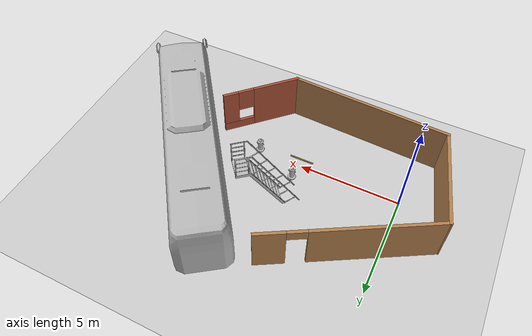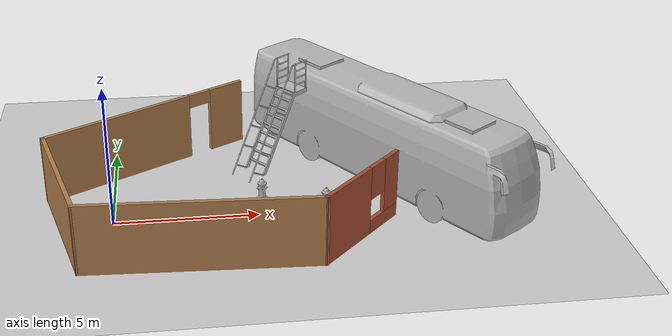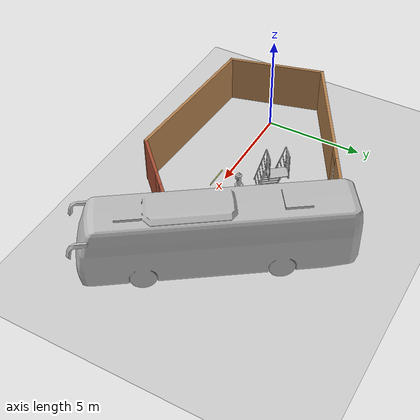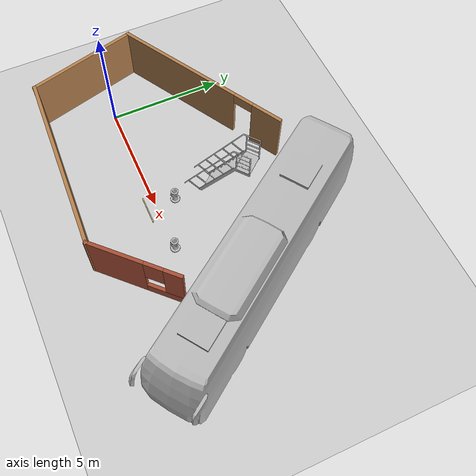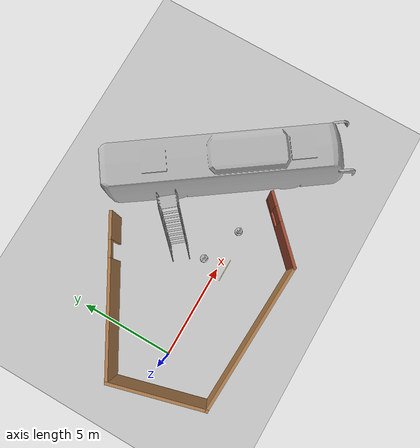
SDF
<sdf version="1.7">
 <world name="default">
  <light name="sun" type="directional">
   <pose>0 0 10 0 -0 0</pose>
   <diffuse>0.8 0.8 0.8 1</diffuse>
   <specular>0.2 0.2 0.2 1</specular>
   <attenuation>
    <range>1000</range>
    <constant>0.9</constant>
    <linear>0.01</linear>
    <quadratic>0.001</quadratic>
   </attenuation>
   <direction>-0.5 0.1 -0.9</direction>
   <spot><inner_angle>0</inner_angle><outer_angle>0</outer_angle><falloff>0</falloff></spot>
  </light>
  <model name="ground_plane">
   <static>1</static>
   <link name="link">
    <collision name="collision">
     <geometry><plane><normal>0 0 1</normal><size>100 100</size></plane></geometry>
     <surface>
      <contact><collide_bitmask>65535</collide_bitmask></contact>
      <friction><ode><mu>100</mu><mu2>50</mu2></ode></friction>
     </surface>
    </collision>
    <visual name="visual">
     <cast_shadows>0</cast_shadows>
     <geometry><plane><normal>0 0 1</normal><size>100 100</size></plane></geometry>
     <material>
      <script><uri>file://media/materials/scripts/gazebo.material</uri><name>Gazebo/Grey</name></script>
     </material>
    </visual>
   </link>
  </model>
  <gravity>0 0 -9.8</gravity>
  <magnetic_field>6e-06 2.3e-05 -4.2e-05</magnetic_field>
  <atmosphere type="adiabatic"/>
  <physics type="ode">
   <max_step_size>0.001</max_step_size>
   <real_time_factor>1</real_time_factor>
   <real_time_update_rate>1000</real_time_update_rate>
  </physics>
  <scene><ambient>0.4 0.4 0.4 1</ambient><background>0.7 0.7 0.7 1</background><shadows>1</shadows></scene>
  <audio><device>default</device></audio>
  <spherical_coordinates>
   <surface_model>EARTH_WGS84</surface_model>
   <latitude_deg>0</latitude_deg>
   <longitude_deg>0</longitude_deg>
   <elevation>0</elevation>
   <heading_deg>0</heading_deg>
  </spherical_coordinates>
  <model name="bus">
   <static>1</static>
   <link name="link">
    <collision name="collision">
     <geometry><mesh><scale>0.01 0.01 0.01</scale><uri>model://bus/meshes/bus.obj</uri></mesh></geometry>
    </collision>
    <visual name="visual">
     <geometry><mesh><scale>0.01 0.01 0.01</scale><uri>model://bus/meshes/bus.obj</uri></mesh></geometry>
    </visual>
   </link>
   <pose>9.8195 2.23158 0 0 -0 0.613704</pose>
  </model>
  <model name="fire_hydrant">
   <static>1</static>
   <link name="link">
    <collision name="collision">
     <geometry><mesh><uri>model://fire_hydrant/meshes/fire_hydrant.dae</uri></mesh></geometry>
    </collision>
    <visual name="visual">
     <geometry><mesh><uri>model://fire_hydrant/meshes/fire_hydrant.dae</uri></mesh></geometry>
    </visual>
   </link>
   <pose>7.29538 -0.014192 0 0 -0 0</pose>
  </model>
  <model name="fire_hydrant_0">
   <static>1</static>
   <link name="link">
    <collision name="collision">
     <geometry><mesh><uri>model://fire_hydrant/meshes/fire_hydrant.dae</uri></mesh></geometry>
    </collision>
    <visual name="visual">
     <geometry><mesh><uri>model://fire_hydrant/meshes/fire_hydrant.dae</uri></mesh></geometry>
    </visual>
   </link>
   <pose>5.15849 0.863008 0 0 -0 0</pose>
  </model>
  <model name="lumber_2x4x48">
   <link name="link">
    <inertial>
     <mass>1.4111</mass>
     <inertia><ixx>0.0011</ixx><ixy>0</ixy><ixz>0</ixz><iyy>0.1771</iyy><iyz>0</iyz><izz>0.1763</izz></inertia>
    </inertial>
    <collision name="collision">
     <geometry><box><size>1.2192 0.038 0.0888</size></box></geometry>
     <surface>
      <bounce><restitution_coefficient>0.01</restitution_coefficient><threshold>5</threshold></bounce>
      <friction><ode><mu>5</mu><mu2>5</mu2></ode></friction>
      <contact>
       <ode>
        <soft_cfm>0.001</soft_cfm>
        <kp>10000</kp>
        <kd>1000</kd>
        <max_vel>0.01</max_vel>
        <min_depth>0.001</min_depth>
       </ode>
      </contact>
     </surface>
    </collision>
    <visual name="visual">
     <geometry><mesh><uri>model://drc_practice_2x4/meshes/2x4x48.dae</uri></mesh></geometry>
    </visual>
   </link>
   <pose>5.16284 -0.390516 0.043055 0 -0 0</pose>
  </model>
  <model name="ladder">
   <static>1</static>
   <link name="link">
    <collision name="step0">
     <pose>0 -0.96703 0.286 0 -0 0</pose>
     <geometry><box><size>0.9 0.1016 0.0381</size></box></geometry>
    </collision>
    <collision name="step1">
     <pose>0 -0.79106 0.59054 0 -0 0</pose>
     <geometry><box><size>0.9 0.1016 0.0381</size></box></geometry>
    </collision>
    <collision name="step2">
     <pose>0 -0.61509 0.89508 0 -0 0</pose>
     <geometry><box><size>0.9 0.1016 0.0381</size></box></geometry>
    </collision>
    <collision name="step3">
     <pose>0 -0.43912 1.19962 0 -0 0</pose>
     <geometry><box><size>0.9 0.1016 0.0381</size></box></geometry>
    </collision>
    <collision name="step4">
     <pose>0 -0.26315 1.50416 0 -0 0</pose>
     <geometry><box><size>0.9 0.1016 0.0381</size></box></geometry>
    </collision>
    <collision name="step5">
     <pose>0 -0.08718 1.8087 0 -0 0</pose>
     <geometry><box><size>0.9 0.1016 0.0381</size></box></geometry>
    </collision>
    <collision name="step6">
     <pose>0 0.08879 2.11324 0 -0 0</pose>
     <geometry><box><size>0.9 0.1016 0.0381</size></box></geometry>
    </collision>
    <collision name="step7">
     <pose>0 0.26476 2.41778 0 -0 0</pose>
     <geometry><box><size>0.9 0.1016 0.0381</size></box></geometry>
    </collision>
    <collision name="landing">
     <pose>0 0.73039 2.72432 0 -0 0</pose>
     <geometry><box><size>0.9 0.6096 0.0381</size></box></geometry>
    </collision>
    <collision name="left_side_wall">
     <pose>-0.43217 -0.37451 1.3386 1.0472 -0 0</pose>
     <geometry><box><size>0.0508 3.16758 0.13</size></box></geometry>
    </collision>
    <collision name="left_side_landing_wall">
     <pose>-0.43217 0.69819 2.667 0 -0 0</pose>
     <geometry><box><size>0.0508 0.67401 0.1524</size></box></geometry>
    </collision>
    <collision name="left_railing_landing_3">
     <pose>-0.433355 0.66933 3.81 1.5707 -0 0</pose>
     <geometry><cylinder><radius>0.02413</radius><length>0.73172</length></cylinder></geometry>
    </collision>
    <collision name="left_railing_landing_2">
     <pose>-0.433355 0.73166 3.5433 1.5707 -0 0</pose>
     <geometry><cylinder><radius>0.02413</radius><length>0.5588</length></cylinder></geometry>
    </collision>
    <collision name="left_railing_landing_1">
     <pose>-0.433355 0.73166 3.2766 1.5707 -0 0</pose>
     <geometry><cylinder><radius>0.02413</radius><length>0.5588</length></cylinder></geometry>
    </collision>
    <collision name="left_railing_landing_0">
     <pose>-0.433355 0.73166 3.0099 1.5707 -0 0</pose>
     <geometry><cylinder><radius>0.02413</radius><length>0.5588</length></cylinder></geometry>
    </collision>
    <collision name="left_railing_landing_upright_back">
     <pose>-0.433355 1.01088 3.2766 0 -0 0</pose>
     <geometry><cylinder><radius>0.02413</radius><length>1.0668</length></cylinder></geometry>
    </collision>
    <collision name="left_railing_landing_upright_front">
     <pose>-0.433355 0.45208 3.2766 0 -0 0</pose>
     <geometry><cylinder><radius>0.02413</radius><length>1.0668</length></cylinder></geometry>
    </collision>
    <collision name="left_railing_upright_4">
     <pose>-0.433355 0.0699 2.80986 1.03414 -0 0</pose>
     <geometry><cylinder><radius>0.02413</radius><length>0.57</length></cylinder></geometry>
    </collision>
    <collision name="left_railing_upright_3">
     <pose>-0.433355 -0.31006 2.15169 1.03414 -0 0</pose>
     <geometry><cylinder><radius>0.02413</radius><length>0.57</length></cylinder></geometry>
    </collision>
    <collision name="left_railing_upright_2">
     <pose>-0.433355 -0.6911 1.49172 1.03414 -0 0</pose>
     <geometry><cylinder><radius>0.02413</radius><length>0.57</length></cylinder></geometry>
    </collision>
    <collision name="left_railing_upright_1">
     <pose>-0.433355 -1.0732 0.82995 1.03414 -0 0</pose>
     <geometry><cylinder><radius>0.02413</radius><length>0.57</length></cylinder></geometry>
    </collision>
    <collision name="left_railing_upright_0">
     <pose>-0.433355 -1.45316 0.17179 1.03414 -0 0</pose>
     <geometry><cylinder><radius>0.02413</radius><length>0.57</length></cylinder></geometry>
    </collision>
    <collision name="left_railing_long">
     <pose>-0.433355 -0.781 1.9068 -0.523503 0 0</pose>
     <geometry><cylinder><radius>0.02413</radius><length>4.42295</length></cylinder></geometry>
    </collision>
    <collision name="right_side_wall">
     <pose>0.43217 -0.37451 1.3386 1.0472 -0 0</pose>
     <geometry><box><size>0.0508 3.16758 0.13</size></box></geometry>
    </collision>
    <collision name="right_side_landing_wall">
     <pose>0.43217 0.69819 2.667 0 -0 0</pose>
     <geometry><box><size>0.0508 0.67401 0.1524</size></box></geometry>
    </collision>
    <collision name="right_railing_landing_3">
     <pose>0.433355 0.66933 3.81 1.5707 -0 0</pose>
     <geometry><cylinder><radius>0.02413</radius><length>0.73172</length></cylinder></geometry>
    </collision>
    <collision name="right_railing_landing_2">
     <pose>0.433355 0.73166 3.5433 1.5707 -0 0</pose>
     <geometry><cylinder><radius>0.02413</radius><length>0.5588</length></cylinder></geometry>
    </collision>
    <collision name="right_railing_landing_1">
     <pose>0.433355 0.73166 3.2766 1.5707 -0 0</pose>
     <geometry><cylinder><radius>0.02413</radius><length>0.5588</length></cylinder></geometry>
    </collision>
    <collision name="right_railing_landing_0">
     <pose>0.433355 0.73166 3.0099 1.5707 -0 0</pose>
     <geometry><cylinder><radius>0.02413</radius><length>0.5588</length></cylinder></geometry>
    </collision>
    <collision name="right_railing_landing_upright_back">
     <pose>0.433355 1.01088 3.2766 0 -0 0</pose>
     <geometry><cylinder><radius>0.02413</radius><length>1.0668</length></cylinder></geometry>
    </collision>
    <collision name="right_railing_landing_upright_front">
     <pose>0.433355 0.45208 3.2766 0 -0 0</pose>
     <geometry><cylinder><radius>0.02413</radius><length>1.0668</length></cylinder></geometry>
    </collision>
    <collision name="right_railing_upright_4">
     <pose>0.433355 0.0699 2.80986 1.03414 -0 0</pose>
     <geometry><cylinder><radius>0.02413</radius><length>0.57</length></cylinder></geometry>
    </collision>
    <collision name="right_railing_upright_3">
     <pose>0.433355 -0.31006 2.15169 1.03414 -0 0</pose>
     <geometry><cylinder><radius>0.02413</radius><length>0.57</length></cylinder></geometry>
    </collision>
    <collision name="right_railing_upright_2">
     <pose>0.433355 -0.6911 1.49172 1.03414 -0 0</pose>
     <geometry><cylinder><radius>0.02413</radius><length>0.57</length></cylinder></geometry>
    </collision>
    <collision name="right_railing_upright_1">
     <pose>0.433355 -1.0732 0.82995 1.03414 -0 0</pose>
     <geometry><cylinder><radius>0.02413</radius><length>0.57</length></cylinder></geometry>
    </collision>
    <collision name="right_railing_upright_0">
     <pose>0.433355 -1.45316 0.17179 1.03414 -0 0</pose>
     <geometry><cylinder><radius>0.02413</radius><length>0.57</length></cylinder></geometry>
    </collision>
    <collision name="right_railing_long">
     <pose>0.433355 -0.781 1.9068 -0.523503 0 0</pose>
     <geometry><cylinder><radius>0.02413</radius><length>4.42295</length></cylinder></geometry>
    </collision>
    <visual name="visual">
     <geometry><mesh><uri>model://drc_practice_ladder/meshes/ladder.dae</uri></mesh></geometry>
    </visual>
   </link>
   <pose>5.94831 3.02187 0.45425 0 0 -0.882876</pose>
  </model>
  <model name="my_building">
   <pose>3.63503 1.26639 0 0 -0 0</pose>
   <link name="Wall_0">
    <collision name="Wall_0_Collision">
     <geometry><box><size>5 0.15 2.5</size></box></geometry>
     <pose>0 0 1.25 0 -0 0</pose>
    </collision>
    <visual name="Wall_0_Visual">
     <pose>0 0 1.25 0 -0 0</pose>
     <geometry><box><size>5 0.15 2.5</size></box></geometry>
     <material>
      <script><uri>file://media/materials/scripts/gazebo.material</uri><name>Gazebo/Wood</name></script>
      <ambient>1 1 1 1</ambient>
     </material>
     <meta><layer>0</layer></meta>
    </visual>
    <pose>-5.27099 -1.84237 0 0 -0 -1.309</pose>
   </link>
   <link name="Wall_1">
    <collision name="Wall_1_Collision">
     <geometry><box><size>7.97438 0.15 2.5</size></box></geometry>
     <pose>0 0 1.25 0 -0 0</pose>
    </collision>
    <visual name="Wall_1_Visual">
     <pose>0 0 1.25 0 -0 0</pose>
     <geometry><box><size>7.97438 0.15 2.5</size></box></geometry>
     <material>
      <script><uri>file://media/materials/scripts/gazebo.material</uri><name>Gazebo/Wood</name></script>
      <ambient>1 1 1 1</ambient>
     </material>
     <meta><layer>0</layer></meta>
    </visual>
    <pose>-0.73535 -4.36556 0 0 -0 -0.046237</pose>
   </link>
   <link name="Wall_2">
    <pose>4.53384 -3.18521 0 0 -0 0.785398</pose>
    <visual name="Wall_2_Visual_0">
     <pose>-0.790952 0 1.25 0 -0 0</pose>
     <geometry><box><size>2.4181 0.15 2.5</size></box></geometry>
     <material>
      <script><uri>file://media/materials/scripts/gazebo.material</uri><name>Gazebo/Bricks</name></script>
      <ambient>1 1 1 1</ambient>
     </material>
     <meta><layer>0</layer></meta>
    </visual>
    <collision name="Wall_2_Collision_0">
     <geometry><box><size>2.4181 0.15 2.5</size></box></geometry>
     <pose>-0.790952 0 1.25 0 -0 0</pose>
    </collision>
    <visual name="Wall_2_Visual_1">
     <pose>1.20905 0 0.25 0 -0 0</pose>
     <geometry><box><size>1.5819 0.15 0.5</size></box></geometry>
     <material>
      <script><uri>file://media/materials/scripts/gazebo.material</uri><name>Gazebo/Bricks</name></script>
      <ambient>1 1 1 1</ambient>
     </material>
     <meta><layer>0</layer></meta>
    </visual>
    <collision name="Wall_2_Collision_1">
     <geometry><box><size>1.5819 0.15 0.5</size></box></geometry>
     <pose>1.20905 0 0.25 0 -0 0</pose>
    </collision>
    <visual name="Wall_2_Visual_2">
     <pose>1.60905 0 1.5 0 -0 0</pose>
     <geometry><box><size>0.781905 0.15 2</size></box></geometry>
     <material>
      <script><uri>file://media/materials/scripts/gazebo.material</uri><name>Gazebo/Bricks</name></script>
      <ambient>1 1 1 1</ambient>
     </material>
     <meta><layer>0</layer></meta>
    </visual>
    <collision name="Wall_2_Collision_2">
     <geometry><box><size>0.781905 0.15 2</size></box></geometry>
     <pose>1.60905 0 1.5 0 -0 0</pose>
    </collision>
    <visual name="Wall_2_Visual_3">
     <pose>0.818095 0 1.9 0 -0 0</pose>
     <geometry><box><size>0.8 0.15 1.2</size></box></geometry>
     <material>
      <script><uri>file://media/materials/scripts/gazebo.material</uri><name>Gazebo/Bricks</name></script>
      <ambient>1 1 1 1</ambient>
     </material>
     <meta><layer>0</layer></meta>
    </visual>
    <collision name="Wall_2_Collision_3">
     <geometry><box><size>0.8 0.15 1.2</size></box></geometry>
     <pose>0.818095 0 1.9 0 -0 0</pose>
    </collision>
   </link>
   <link name="Wall_4">
    <pose>-2.39123 2.525 0 0 -0 -2.61799</pose>
    <visual name="Wall_4_Visual_0">
     <pose>-3.41084 0 1.25 0 -0 0</pose>
     <geometry><box><size>1.42833 0.15 2.5</size></box></geometry>
     <material>
      <script><uri>file://media/materials/scripts/gazebo.material</uri><name>Gazebo/Wood</name></script>
      <ambient>1 1 1 1</ambient>
     </material>
     <meta><layer>0</layer></meta>
    </visual>
    <collision name="Wall_4_Collision_0">
     <geometry><box><size>1.42833 0.15 2.5</size></box></geometry>
     <pose>-3.41084 0 1.25 0 -0 0</pose>
    </collision>
    <visual name="Wall_4_Visual_1">
     <pose>1.16416 0 1.25 0 -0 0</pose>
     <geometry><box><size>5.92167 0.15 2.5</size></box></geometry>
     <material>
      <script><uri>file://media/materials/scripts/gazebo.material</uri><name>Gazebo/Wood</name></script>
      <ambient>1 1 1 1</ambient>
     </material>
     <meta><layer>0</layer></meta>
    </visual>
    <collision name="Wall_4_Collision_1">
     <geometry><box><size>5.92167 0.15 2.5</size></box></geometry>
     <pose>1.16416 0 1.25 0 -0 0</pose>
    </collision>
    <visual name="Wall_4_Visual_2">
     <pose>-2.24667 0 2.25 0 -0 0</pose>
     <geometry><box><size>0.9 0.15 0.5</size></box></geometry>
     <material>
      <script><uri>file://media/materials/scripts/gazebo.material</uri><name>Gazebo/Wood</name></script>
      <ambient>1 1 1 1</ambient>
     </material>
     <meta><layer>0</layer></meta>
    </visual>
    <collision name="Wall_4_Collision_2">
     <geometry><box><size>0.9 0.15 0.5</size></box></geometry>
     <pose>-2.24667 0 2.25 0 -0 0</pose>
    </collision>
   </link>
   <static>1</static>
  </model>
 </world>
</sdf>
